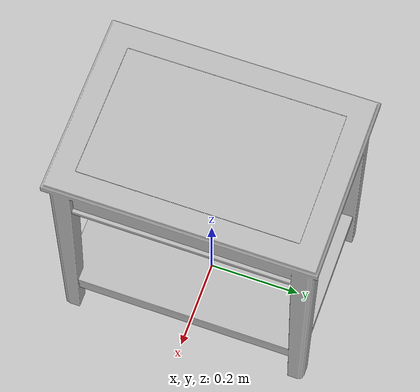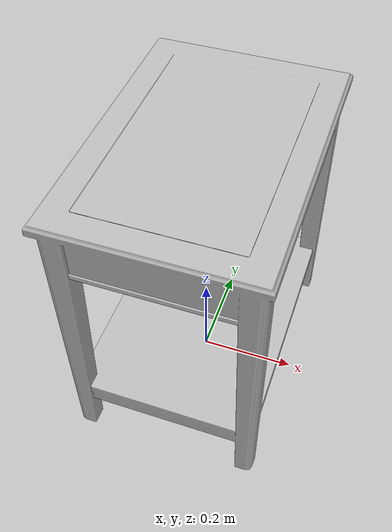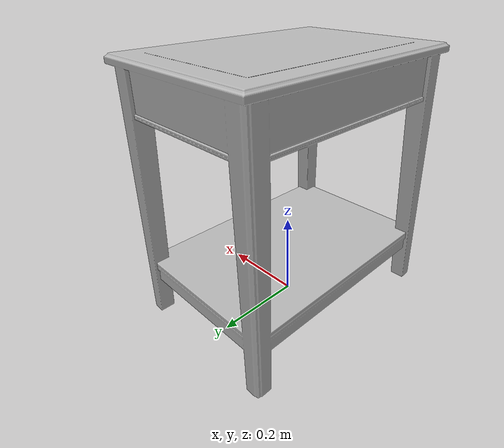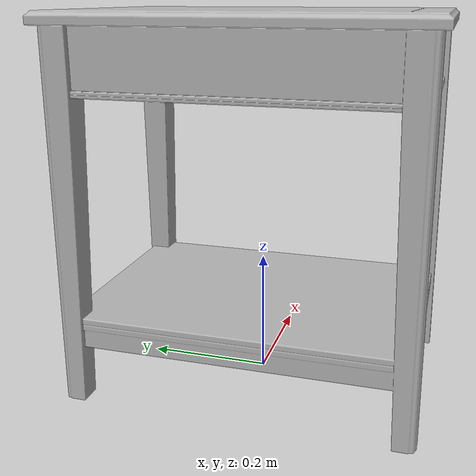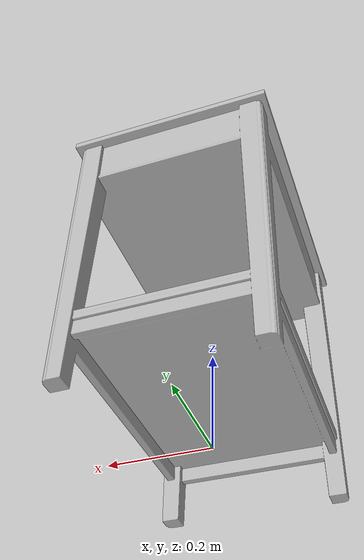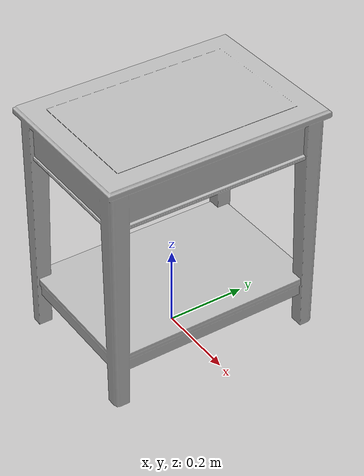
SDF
<?xml version='1.0'?>
<sdf version='1.4'>
  <model name='s__1005'>
    <pose>0 0 0 0 0 0</pose>
    <static>true</static>
    <link name='link'>
      <collision name='collision'>
        <pose>0 0 0 0 0 0</pose>
        <geometry>
          <box>
            <size>0.4 0.57 2</size>
          </box>
        </geometry>
      </collision>
      <visual name='visual'>
        <pose>0 0 0 0 0 0</pose>
        <geometry>
          <mesh><uri>model://s__1005/s__1005.dae</uri></mesh>
        </geometry>
      </visual>
    </link>
  </model>
</sdf>
